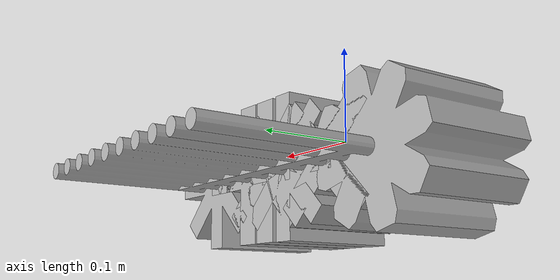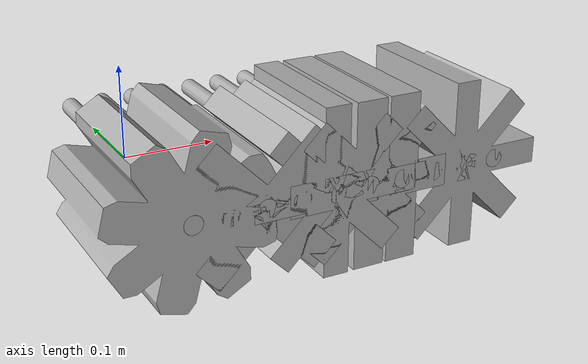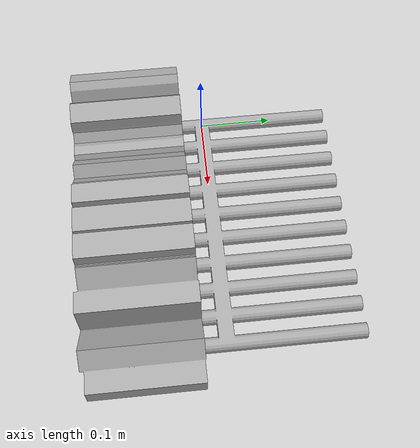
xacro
<?xml version="1.0" ?>
<robot name="gear_check" xmlns:xacro="http://www.ros.org/wiki/xacro">

<xacro:include filename="$(find gear_check_description)/urdf/materials.xacro" />
<xacro:include filename="$(find gear_check_description)/urdf/gear_check.trans" />
<xacro:include filename="$(find gear_check_description)/urdf/gear_check.gazebo" />
<link name="base_link">
  <inertial>
    <origin xyz="0.1694160000000001 6.013399387320873e-17 1.879187308537773e-18" rpy="0 0 0"/>
    <mass value="1.2099574875277086"/>
    <inertia ixx="0.012249" iyy="0.014034" izz="0.02622" ixy="0.0" iyz="0.0" ixz="0.0"/>
  </inertial>
  <visual>
    <origin xyz="0 0 0" rpy="0 0 0"/>
    <geometry>
      <mesh filename="package://gear_check_description/meshes/base_link.stl" scale="0.001 0.001 0.001"/>
    </geometry>
    <material name="silver"/>
  </visual>
  <collision>
    <origin xyz="0 0 0" rpy="0 0 0"/>
    <geometry>
      <mesh filename="package://gear_check_description/meshes/base_link.stl" scale="0.001 0.001 0.001"/>
    </geometry>
  </collision>
</link>

<link name="geart_1">
  <inertial>
    <origin xyz="4.1466829969749597e-14 0.07500000000000002 7.639765913131415e-17" rpy="0 0 0"/>
    <mass value="2.380949134081888"/>
    <inertia ixx="0.008464" iyy="0.007999" izz="0.008464" ixy="0.0" iyz="0.0" ixz="0.0"/>
  </inertial>
  <visual>
    <origin xyz="-0.150592 0.18 -0.0" rpy="0 0 0"/>
    <geometry>
      <mesh filename="package://gear_check_description/meshes/geart_1.stl" scale="0.001 0.001 0.001"/>
    </geometry>
    <material name="silver"/>
  </visual>
  <collision>
    <origin xyz="-0.150592 0.18 -0.0" rpy="0 0 0"/>
    <geometry>
      <mesh filename="package://gear_check_description/meshes/geart_1.stl" scale="0.001 0.001 0.001"/>
    </geometry>
  </collision>
</link>

<link name="geartyok_1">
  <inertial>
    <origin xyz="3.58046925441613e-14 0.07499999999999997 0.0" rpy="0 0 0"/>
    <mass value="2.754530739710083"/>
    <inertia ixx="0.009962" iyy="0.009594" izz="0.009962" ixy="0.0" iyz="0.0" ixz="0.0"/>
  </inertial>
  <visual>
    <origin xyz="-0.18824 0.18 -0.0" rpy="0 0 0"/>
    <geometry>
      <mesh filename="package://gear_check_description/meshes/geartyok_1.stl" scale="0.001 0.001 0.001"/>
    </geometry>
    <material name="silver"/>
  </visual>
  <collision>
    <origin xyz="-0.18824 0.18 -0.0" rpy="0 0 0"/>
    <geometry>
      <mesh filename="package://gear_check_description/meshes/geartyok_1.stl" scale="0.001 0.001 0.001"/>
    </geometry>
  </collision>
</link>

<link name="geartyokk_1">
  <inertial>
    <origin xyz="5.162537064506978e-15 0.07500000000000001 7.528019646738304e-17" rpy="0 0 0"/>
    <mass value="2.416292051434772"/>
    <inertia ixx="0.008531" iyy="0.008001" izz="0.008531" ixy="-0.0" iyz="0.0" ixz="0.0"/>
  </inertial>
  <visual>
    <origin xyz="-0.301184 0.18 -0.0" rpy="0 0 0"/>
    <geometry>
      <mesh filename="package://gear_check_description/meshes/geartyokk_1.stl" scale="0.001 0.001 0.001"/>
    </geometry>
    <material name="silver"/>
  </visual>
  <collision>
    <origin xyz="-0.301184 0.18 -0.0" rpy="0 0 0"/>
    <geometry>
      <mesh filename="package://gear_check_description/meshes/geartyokk_1.stl" scale="0.001 0.001 0.001"/>
    </geometry>
  </collision>
</link>

<link name="gearnaname_1">
  <inertial>
    <origin xyz="7.493221873409896e-05 0.075 4.462749146274174e-05" rpy="0 0 0"/>
    <mass value="3.022850628302408"/>
    <inertia ixx="0.011052" iyy="0.010793" izz="0.011077" ixy="0.0" iyz="-0.0" ixz="-2.7e-05"/>
  </inertial>
  <visual>
    <origin xyz="-0.0 0.18 -0.0" rpy="0 0 0"/>
    <geometry>
      <mesh filename="package://gear_check_description/meshes/gearnaname_1.stl" scale="0.001 0.001 0.001"/>
    </geometry>
    <material name="silver"/>
  </visual>
  <collision>
    <origin xyz="-0.0 0.18 -0.0" rpy="0 0 0"/>
    <geometry>
      <mesh filename="package://gear_check_description/meshes/gearnaname_1.stl" scale="0.001 0.001 0.001"/>
    </geometry>
  </collision>
</link>

<link name="gear_mainc_1">
  <inertial>
    <origin xyz="-1.3877787807814457e-17 0.07499999999999997 3.4007440022514314e-17" rpy="0 0 0"/>
    <mass value="1.6046395162425733"/>
    <inertia ixx="0.005485" iyy="0.004952" izz="0.005485" ixy="-0.0" iyz="-0.0" ixz="-0.0"/>
  </inertial>
  <visual>
    <origin xyz="-0.075296 0.18 -0.0" rpy="0 0 0"/>
    <geometry>
      <mesh filename="package://gear_check_description/meshes/gear_mainc_1.stl" scale="0.001 0.001 0.001"/>
    </geometry>
    <material name="silver"/>
  </visual>
  <collision>
    <origin xyz="-0.075296 0.18 -0.0" rpy="0 0 0"/>
    <geometry>
      <mesh filename="package://gear_check_description/meshes/gear_mainc_1.stl" scale="0.001 0.001 0.001"/>
    </geometry>
  </collision>
</link>

<link name="gear_maint_1">
  <inertial>
    <origin xyz="6.147859998861804e-14 0.075 1.1335813340838095e-17" rpy="0 0 0"/>
    <mass value="1.604639516242575"/>
    <inertia ixx="0.005485" iyy="0.004952" izz="0.005485" ixy="0.0" iyz="-0.0" ixz="0.0"/>
  </inertial>
  <visual>
    <origin xyz="-0.225888 0.18 -0.0" rpy="0 0 0"/>
    <geometry>
      <mesh filename="package://gear_check_description/meshes/gear_maint_1.stl" scale="0.001 0.001 0.001"/>
    </geometry>
    <material name="silver"/>
  </visual>
  <collision>
    <origin xyz="-0.225888 0.18 -0.0" rpy="0 0 0"/>
    <geometry>
      <mesh filename="package://gear_check_description/meshes/gear_maint_1.stl" scale="0.001 0.001 0.001"/>
    </geometry>
  </collision>
</link>

<joint name="2" type="fixed">
  <origin xyz="0.150592 -0.18 0.0" rpy="0 0 0"/>
  <parent link="base_link"/>
  <child link="geart_1"/>
</joint>

<joint name="3" type="fixed">
  <origin xyz="0.18824 -0.18 0.0" rpy="0 0 0"/>
  <parent link="base_link"/>
  <child link="geartyok_1"/>
</joint>

<joint name="4" type="fixed">
  <origin xyz="0.301184 -0.18 0.0" rpy="0 0 0"/>
  <parent link="base_link"/>
  <child link="geartyokk_1"/>
</joint>

<joint name="1" type="fixed">
  <origin xyz="0.0 -0.18 0.0" rpy="0 0 0"/>
  <parent link="base_link"/>
  <child link="gearnaname_1"/>
</joint>

<joint name="5" type="fixed">
  <origin xyz="0.075296 -0.18 0.0" rpy="0 0 0"/>
  <parent link="base_link"/>
  <child link="gear_mainc_1"/>
</joint>

<joint name="6" type="fixed">
  <origin xyz="0.225888 -0.18 0.0" rpy="0 0 0"/>
  <parent link="base_link"/>
  <child link="gear_maint_1"/>
</joint>

</robot>

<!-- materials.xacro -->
<robot name="gear_check" xmlns:xacro="http://www.ros.org/wiki/xacro" >

<material name="silver">
  <color rgba="0.700 0.700 0.700 1.000"/>
</material>

</robot>

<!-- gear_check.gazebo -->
<robot name="gear_check" xmlns:xacro="http://www.ros.org/wiki/xacro" >

<xacro:property name="body_color" value="Gazebo/Silver" />

<gazebo>
  <plugin name="control" filename="libgazebo_ros_control.so"/>
</gazebo>
<gazebo reference="base_link">
  <material>${body_color}</material>
  <mu1>0.2</mu1>
  <mu2>0.2</mu2>
  <selfCollide>true</selfCollide>
  <gravity>true</gravity>
</gazebo>

<gazebo reference="geart_1">
  <material>${body_color}</material>
  <mu1>0.2</mu1>
  <mu2>0.2</mu2>
  <selfCollide>true</selfCollide>
</gazebo>

<gazebo reference="geartyok_1">
  <material>${body_color}</material>
  <mu1>0.2</mu1>
  <mu2>0.2</mu2>
  <selfCollide>true</selfCollide>
</gazebo>

<gazebo reference="geartyokk_1">
  <material>${body_color}</material>
  <mu1>0.2</mu1>
  <mu2>0.2</mu2>
  <selfCollide>true</selfCollide>
</gazebo>

<gazebo reference="gearnaname_1">
  <material>${body_color}</material>
  <mu1>0.2</mu1>
  <mu2>0.2</mu2>
  <selfCollide>true</selfCollide>
</gazebo>

<gazebo reference="gear_mainc_1">
  <material>${body_color}</material>
  <mu1>0.2</mu1>
  <mu2>0.2</mu2>
  <selfCollide>true</selfCollide>
</gazebo>

<gazebo reference="gear_maint_1">
  <material>${body_color}</material>
  <mu1>0.2</mu1>
  <mu2>0.2</mu2>
  <selfCollide>true</selfCollide>
</gazebo>

</robot>
